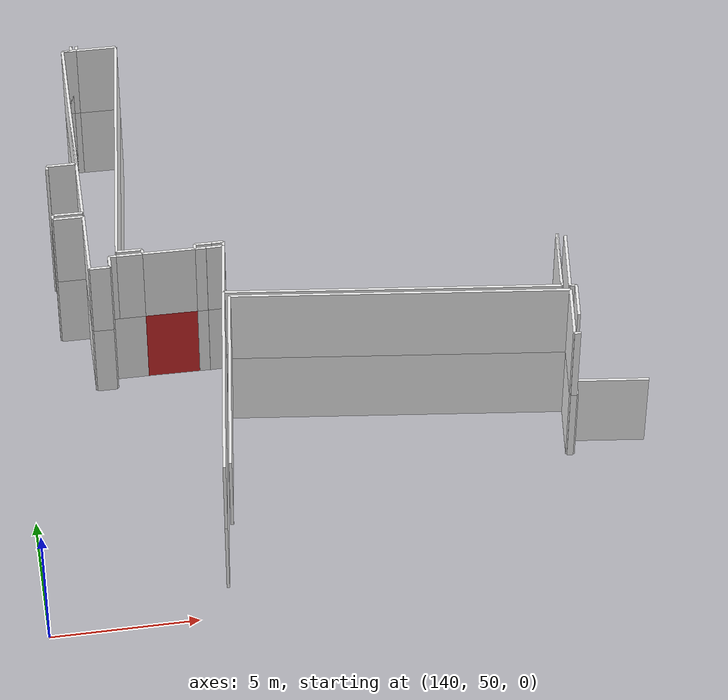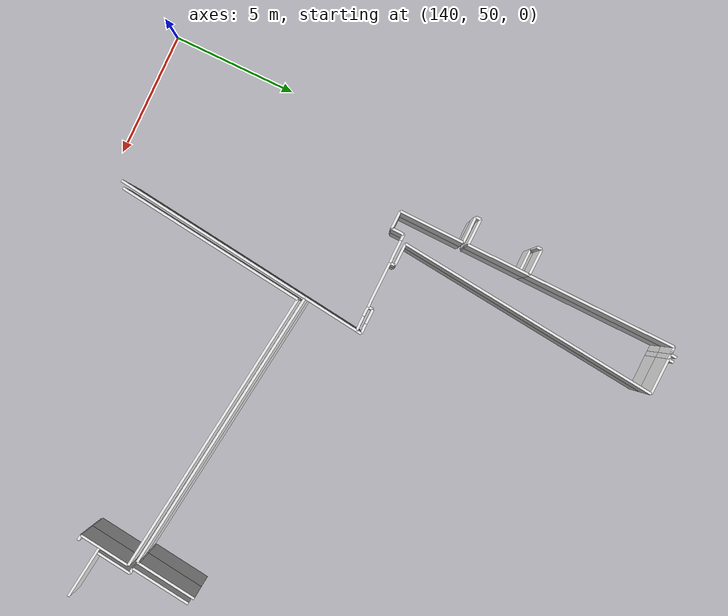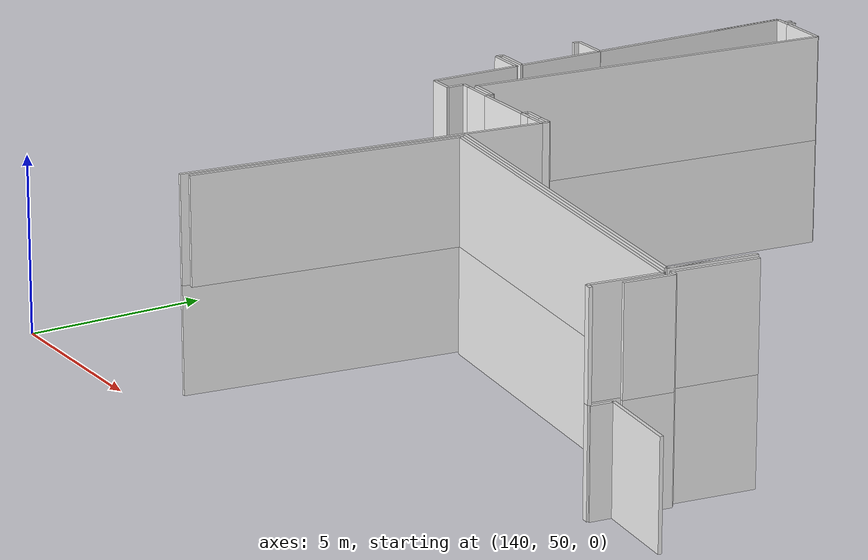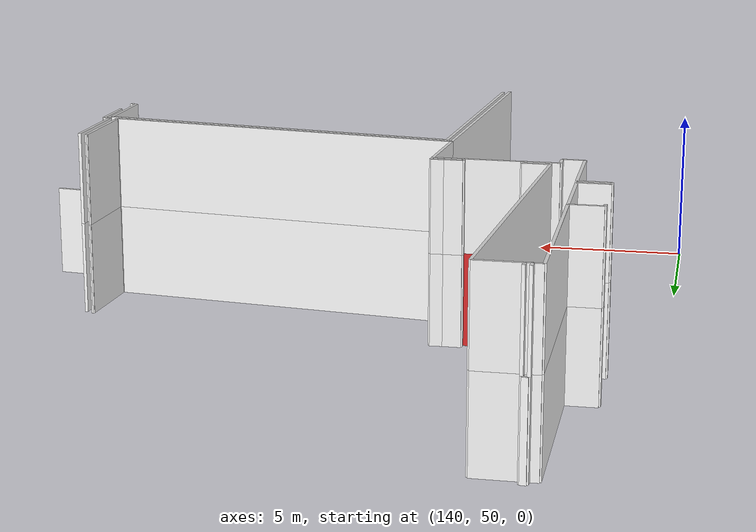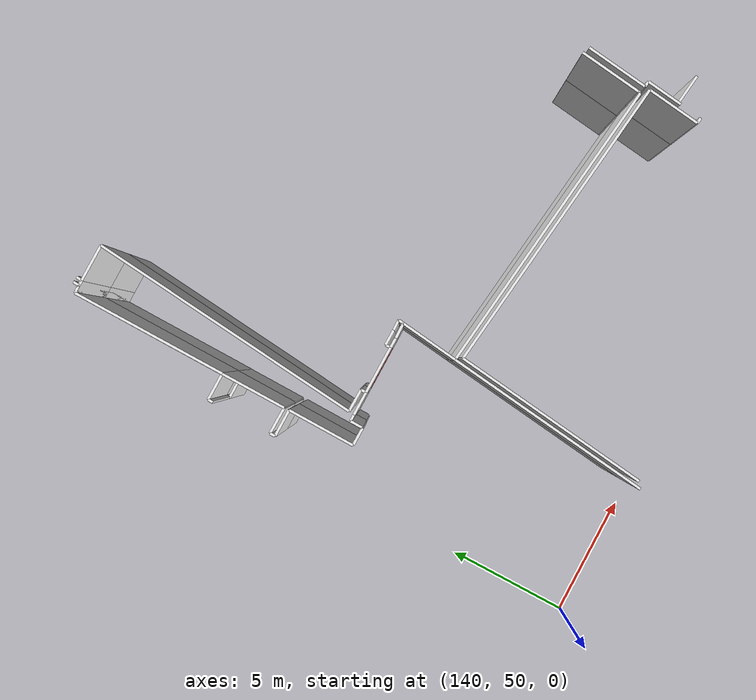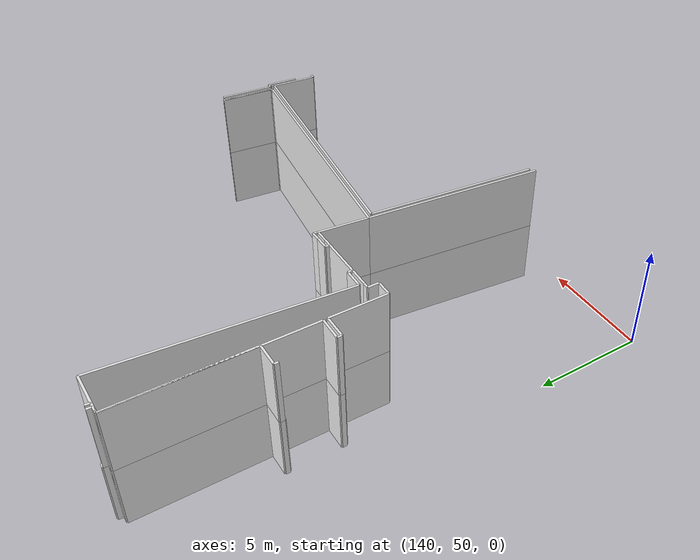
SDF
<sdf version="1.6">
 <world name="default">
  <model name="wall_145.4_61.4_1.5">
   <static>true</static>
   <pose>145.44999999998254 61.360000000102445 1.5 0 0 -0.011110653908026076</pose>
   <link name="link">
    <visual name="visual">
     <geometry><box><size>1.8001111076705336 0.1 3</size></box></geometry>
     <material>
      <script><uri>file://media/materials/scripts/gazebo.material</uri><name>Gazebo/Red</name></script>
     </material>
    </visual>
    <collision name="collision"><geometry><box><size>1.8001111076705336 0.1 3</size></box></geometry></collision>
   </link>
  </model>
  <model name="wall_152.9_58.2_1.5">
   <static>true</static>
   <pose>152.92500000001746 58.22999999998137 1.5 0 0 -0.12015333859032509</pose>
   <link name="link">
    <visual name="visual">
     <geometry><box><size>11.513005689199145 0.1 3</size></box></geometry>
     <material>
      <script><uri>file://media/materials/scripts/gazebo.material</uri><name>Gazebo/White</name></script>
     </material>
    </visual>
    <collision name="collision"><geometry><box><size>11.513005689199145 0.1 3</size></box></geometry></collision>
   </link>
  </model>
  <model name="wall_158.5_56.5_1.5">
   <static>true</static>
   <pose>158.51500000001397 56.53000000002794 1.5 0 0 -1.6939325529007196</pose>
   <link name="link">
    <visual name="visual">
     <geometry><box><size>2.0354115063237828 0.1 3</size></box></geometry>
     <material>
      <script><uri>file://media/materials/scripts/gazebo.material</uri><name>Gazebo/White</name></script>
     </material>
    </visual>
    <collision name="collision"><geometry><box><size>2.0354115063237828 0.1 3</size></box></geometry></collision>
   </link>
  </model>
  <model name="wall_158.5_55.5_1.5">
   <static>true</static>
   <pose>158.49499999999534 55.50500000012107 1.5 0 0 -0.14189705367284136</pose>
   <link name="link">
    <visual name="visual">
     <geometry><box><size>0.2121320342901098 0.1 3</size></box></geometry>
     <material>
      <script><uri>file://media/materials/scripts/gazebo.material</uri><name>Gazebo/White</name></script>
     </material>
    </visual>
    <collision name="collision"><geometry><box><size>0.2121320342901098 0.1 3</size></box></geometry></collision>
   </link>
  </model>
  <model name="wall_158.8_57.0_1.5">
   <static>true</static>
   <pose>158.7850000000035 57.03000000002794 1.5 0 0 1.4482254517181363</pose>
   <link name="link">
    <visual name="visual">
     <geometry><box><size>1.390431588022665 0.1 3</size></box></geometry>
     <material>
      <script><uri>file://media/materials/scripts/gazebo.material</uri><name>Gazebo/White</name></script>
     </material>
    </visual>
    <collision name="collision"><geometry><box><size>1.390431588022665 0.1 3</size></box></geometry></collision>
   </link>
  </model>
  <model name="wall_158.8_57.7_1.5">
   <static>true</static>
   <pose>158.76499999998487 57.730000000214204 1.5 0 0 3.0466409471685547</pose>
   <link name="link">
    <visual name="visual">
     <geometry><box><size>0.21095023111991618 0.1 3</size></box></geometry>
     <material>
      <script><uri>file://media/materials/scripts/gazebo.material</uri><name>Gazebo/White</name></script>
     </material>
    </visual>
    <collision name="collision"><geometry><box><size>0.21095023111991618 0.1 3</size></box></geometry></collision>
   </link>
  </model>
  <model name="wall_158.8_58.9_1.5">
   <static>true</static>
   <pose>158.80499999999302 58.93000000016764 1.5 0 0 1.4495453057038894</pose>
   <link name="link">
    <visual name="visual">
     <geometry><box><size>2.3976029695280316 0.1 3</size></box></geometry>
     <material>
      <script><uri>file://media/materials/scripts/gazebo.material</uri><name>Gazebo/White</name></script>
     </material>
    </visual>
    <collision name="collision"><geometry><box><size>2.3976029695280316 0.1 3</size></box></geometry></collision>
   </link>
  </model>
  <model name="wall_159.9_56.0_1.5">
   <static>true</static>
   <pose>159.91499999997905 55.98999999999069 1.5 0 0 3.021688668113723</pose>
   <link name="link">
    <visual name="visual">
     <geometry><box><size>2.508007177047398 0.1 3</size></box></geometry>
     <material>
      <script><uri>file://media/materials/scripts/gazebo.material</uri><name>Gazebo/White</name></script>
     </material>
    </visual>
    <collision name="collision"><geometry><box><size>2.508007177047398 0.1 3</size></box></geometry></collision>
   </link>
  </model>
  <model name="wall_158.6_55.8_1.5">
   <static>true</static>
   <pose>158.6349999999802 55.81500000017695 1.5 0 0 -1.6780751824691755</pose>
   <link name="link">
    <visual name="visual">
     <geometry><box><size>0.6537583650553972 0.1 3</size></box></geometry>
     <material>
      <script><uri>file://media/materials/scripts/gazebo.material</uri><name>Gazebo/White</name></script>
     </material>
    </visual>
    <collision name="collision"><geometry><box><size>0.6537583650553972 0.1 3</size></box></geometry></collision>
   </link>
  </model>
  <model name="wall_142.2_63.7_1.5">
   <static>true</static>
   <pose>142.2049999999872 63.670000000158325 1.5 0 0 -0.01941503592096556</pose>
   <link name="link">
    <visual name="visual">
     <geometry><box><size>1.0301941564279975 0.1 3</size></box></geometry>
     <material>
      <script><uri>file://media/materials/scripts/gazebo.material</uri><name>Gazebo/White</name></script>
     </material>
    </visual>
    <collision name="collision"><geometry><box><size>1.0301941564279975 0.1 3</size></box></geometry></collision>
   </link>
  </model>
  <model name="wall_142.7_64.8_1.5">
   <static>true</static>
   <pose>142.73499999998603 64.81000000005588 1.5 0 0 1.5577535881510873</pose>
   <link name="link">
    <visual name="visual">
     <geometry><box><size>2.3001956436670468 0.1 3</size></box></geometry>
     <material>
      <script><uri>file://media/materials/scripts/gazebo.material</uri><name>Gazebo/White</name></script>
     </material>
    </visual>
    <collision name="collision"><geometry><box><size>2.3001956436670468 0.1 3</size></box></geometry></collision>
   </link>
  </model>
  <model name="wall_142.2_66.0_1.5">
   <static>true</static>
   <pose>142.23000000001048 65.96500000008382 1.5 0 0 3.131977565057088</pose>
   <link name="link">
    <visual name="visual">
     <geometry><box><size>1.0400480757932573 0.1 3</size></box></geometry>
     <material>
      <script><uri>file://media/materials/scripts/gazebo.material</uri><name>Gazebo/White</name></script>
     </material>
    </visual>
    <collision name="collision"><geometry><box><size>1.0400480757932573 0.1 3</size></box></geometry></collision>
   </link>
  </model>
  <model name="wall_141.7_66.1_1.5">
   <static>true</static>
   <pose>141.7149999999965 66.06500000017695 1.5 0 0 1.5182132654251468</pose>
   <link name="link">
    <visual name="visual">
     <geometry><box><size>0.19026297584603252 0.1 3</size></box></geometry>
     <material>
      <script><uri>file://media/materials/scripts/gazebo.material</uri><name>Gazebo/White</name></script>
     </material>
    </visual>
    <collision name="collision"><geometry><box><size>0.19026297584603252 0.1 3</size></box></geometry></collision>
   </link>
  </model>
  <model name="wall_142.2_66.2_1.5">
   <static>true</static>
   <pose>142.2399999999907 66.15500000002794 1.5 0 0 -0.009615088532167242</pose>
   <link name="link">
    <visual name="visual">
     <geometry><box><size>1.0400480758514623 0.1 3</size></box></geometry>
     <material>
      <script><uri>file://media/materials/scripts/gazebo.material</uri><name>Gazebo/White</name></script>
     </material>
    </visual>
    <collision name="collision"><geometry><box><size>1.0400480758514623 0.1 3</size></box></geometry></collision>
   </link>
  </model>
  <model name="wall_142.8_69.1_1.5">
   <static>true</static>
   <pose>142.7950000000128 69.10499999998137 1.5 0 0 1.5589525489794016</pose>
   <link name="link">
    <visual name="visual">
     <geometry><box><size>5.910414537218375 0.1 3</size></box></geometry>
     <material>
      <script><uri>file://media/materials/scripts/gazebo.material</uri><name>Gazebo/White</name></script>
     </material>
    </visual>
    <collision name="collision"><geometry><box><size>5.910414537218375 0.1 3</size></box></geometry></collision>
   </link>
  </model>
  <model name="wall_143.0_72.1_1.5">
   <static>true</static>
   <pose>142.98000000001048 72.06000000005588 1.5 0 0 0.0</pose>
   <link name="link">
    <visual name="visual">
     <geometry><box><size>0.29999999998835847 0.1 3</size></box></geometry>
     <material>
      <script><uri>file://media/materials/scripts/gazebo.material</uri><name>Gazebo/White</name></script>
     </material>
    </visual>
    <collision name="collision"><geometry><box><size>0.29999999998835847 0.1 3</size></box></geometry></collision>
   </link>
  </model>
  <model name="wall_143.1_72.2_1.5">
   <static>true</static>
   <pose>143.14000000001397 72.17999999993481 1.5 0 0 1.4876550947458824</pose>
   <link name="link">
    <visual name="visual">
     <geometry><box><size>0.24083189133608532 0.1 3</size></box></geometry>
     <material>
      <script><uri>file://media/materials/scripts/gazebo.material</uri><name>Gazebo/White</name></script>
     </material>
    </visual>
    <collision name="collision"><geometry><box><size>0.24083189133608532 0.1 3</size></box></geometry></collision>
   </link>
  </model>
  <model name="wall_143.2_72.3_1.5">
   <static>true</static>
   <pose>143.25 72.28999999980442 1.5 0 0 -0.09966865260642473</pose>
   <link name="link">
    <visual name="visual">
     <geometry><box><size>0.20099751237793617 0.1 3</size></box></geometry>
     <material>
      <script><uri>file://media/materials/scripts/gazebo.material</uri><name>Gazebo/White</name></script>
     </material>
    </visual>
    <collision name="collision"><geometry><box><size>0.20099751237793617 0.1 3</size></box></geometry></collision>
   </link>
  </model>
  <model name="wall_146.5_61.3_1.5">
   <static>true</static>
   <pose>146.5349999999744 61.34499999997206 1.5 0 0 -0.02702044984156988</pose>
   <link name="link">
    <visual name="visual">
     <geometry><box><size>0.37013511046832204 0.1 3</size></box></geometry>
     <material>
      <script><uri>file://media/materials/scripts/gazebo.material</uri><name>Gazebo/White</name></script>
     </material>
    </visual>
    <collision name="collision"><geometry><box><size>0.37013511046832204 0.1 3</size></box></geometry></collision>
   </link>
  </model>
  <model name="wall_147.0_61.3_1.5">
   <static>true</static>
   <pose>147.01499999998487 61.34499999997206 1.5 0 0 0.016947530215964846</pose>
   <link name="link">
    <visual name="visual">
     <geometry><box><size>0.5900847397069884 0.1 3</size></box></geometry>
     <material>
      <script><uri>file://media/materials/scripts/gazebo.material</uri><name>Gazebo/White</name></script>
     </material>
    </visual>
    <collision name="collision"><geometry><box><size>0.5900847397069884 0.1 3</size></box></geometry></collision>
   </link>
  </model>
  <model name="wall_147.2_60.2_1.5">
   <static>true</static>
   <pose>147.17499999998836 60.24500000011176 1.5 0 0 -1.6923658132359836</pose>
   <link name="link">
    <visual name="visual">
     <geometry><box><size>2.226432123341154 0.1 3</size></box></geometry>
     <material>
      <script><uri>file://media/materials/scripts/gazebo.material</uri><name>Gazebo/White</name></script>
     </material>
    </visual>
    <collision name="collision"><geometry><box><size>2.226432123341154 0.1 3</size></box></geometry></collision>
   </link>
  </model>
  <model name="wall_146.6_55.2_1.5">
   <static>true</static>
   <pose>146.55999999999767 55.19500000006519 1.5 0 0 -1.6918741795088168</pose>
   <link name="link">
    <visual name="visual">
     <geometry><box><size>7.9481884729783525 0.1 3</size></box></geometry>
     <material>
      <script><uri>file://media/materials/scripts/gazebo.material</uri><name>Gazebo/White</name></script>
     </material>
    </visual>
    <collision name="collision"><geometry><box><size>7.9481884729783525 0.1 3</size></box></geometry></collision>
   </link>
  </model>
  <model name="wall_141.7_63.6_1.5">
   <static>true</static>
   <pose>141.69000000000233 63.580000000074506 1.5 0 0 -1.5707963267948966</pose>
   <link name="link">
    <visual name="visual">
     <geometry><box><size>0.20000000018626451 0.1 3</size></box></geometry>
     <material>
      <script><uri>file://media/materials/scripts/gazebo.material</uri><name>Gazebo/White</name></script>
     </material>
    </visual>
    <collision name="collision"><geometry><box><size>0.20000000018626451 0.1 3</size></box></geometry></collision>
   </link>
  </model>
  <model name="wall_142.2_63.5_1.5">
   <static>true</static>
   <pose>142.20999999999185 63.47500000009313 1.5 0 0 -0.00961508808499551</pose>
   <link name="link">
    <visual name="visual">
     <geometry><box><size>1.04004807578878 0.1 3</size></box></geometry>
     <material>
      <script><uri>file://media/materials/scripts/gazebo.material</uri><name>Gazebo/White</name></script>
     </material>
    </visual>
    <collision name="collision"><geometry><box><size>1.04004807578878 0.1 3</size></box></geometry></collision>
   </link>
  </model>
  <model name="wall_142.7_62.2_1.5">
   <static>true</static>
   <pose>142.70999999999185 62.18500000005588 1.5 0 0 -1.5863592725219522</pose>
   <link name="link">
    <visual name="visual">
     <geometry><box><size>2.570311265494933 0.1 3</size></box></geometry>
     <material>
      <script><uri>file://media/materials/scripts/gazebo.material</uri><name>Gazebo/White</name></script>
     </material>
    </visual>
    <collision name="collision"><geometry><box><size>2.570311265494933 0.1 3</size></box></geometry></collision>
   </link>
  </model>
  <model name="wall_143.0_60.9_1.5">
   <static>true</static>
   <pose>143.04000000000815 60.89500000001863 1.5 0 0 -0.014284742267913651</pose>
   <link name="link">
    <visual name="visual">
     <geometry><box><size>0.7000714249359331 0.1 3</size></box></geometry>
     <material>
      <script><uri>file://media/materials/scripts/gazebo.material</uri><name>Gazebo/White</name></script>
     </material>
    </visual>
    <collision name="collision"><geometry><box><size>0.7000714249359331 0.1 3</size></box></geometry></collision>
   </link>
  </model>
  <model name="wall_143.4_61.1_1.5">
   <static>true</static>
   <pose>143.39500000001863 61.13500000000931 1.5 0 0 1.550390996079279</pose>
   <link name="link">
    <visual name="visual">
     <geometry><box><size>0.4901020299518104 0.1 3</size></box></geometry>
     <material>
      <script><uri>file://media/materials/scripts/gazebo.material</uri><name>Gazebo/White</name></script>
     </material>
    </visual>
    <collision name="collision"><geometry><box><size>0.4901020299518104 0.1 3</size></box></geometry></collision>
   </link>
  </model>
  <model name="wall_143.5_61.4_1.5">
   <static>true</static>
   <pose>143.52500000002328 61.37999999988824 1.5 0 0 0.0</pose>
   <link name="link">
    <visual name="visual">
     <geometry><box><size>0.25 0.1 3</size></box></geometry>
     <material>
      <script><uri>file://media/materials/scripts/gazebo.material</uri><name>Gazebo/White</name></script>
     </material>
    </visual>
    <collision name="collision"><geometry><box><size>0.25 0.1 3</size></box></geometry></collision>
   </link>
  </model>
  <model name="wall_144.1_61.4_1.5">
   <static>true</static>
   <pose>144.10000000000582 61.375 1.5 0 0 -0.011110653649716558</pose>
   <link name="link">
    <visual name="visual">
     <geometry><box><size>0.9000555538035779 0.1 3</size></box></geometry>
     <material>
      <script><uri>file://media/materials/scripts/gazebo.material</uri><name>Gazebo/White</name></script>
     </material>
    </visual>
    <collision name="collision"><geometry><box><size>0.9000555538035779 0.1 3</size></box></geometry></collision>
   </link>
  </model>
  <model name="wall_158.5_59.1_1.5">
   <static>true</static>
   <pose>158.5450000000128 59.06000000005588 1.5 0 0 -1.6930647307080706</pose>
   <link name="link">
    <visual name="visual">
     <geometry><box><size>2.377751038601466 0.1 3</size></box></geometry>
     <material>
      <script><uri>file://media/materials/scripts/gazebo.material</uri><name>Gazebo/White</name></script>
     </material>
    </visual>
    <collision name="collision"><geometry><box><size>2.377751038601466 0.1 3</size></box></geometry></collision>
   </link>
  </model>
  <model name="wall_158.4_57.8_1.5">
   <static>true</static>
   <pose>158.39500000001863 57.829999999841675 1.5 0 0 -1.6704649792860586</pose>
   <link name="link">
    <visual name="visual">
     <geometry><box><size>0.10049875630480566 0.1 3</size></box></geometry>
     <material>
      <script><uri>file://media/materials/scripts/gazebo.material</uri><name>Gazebo/White</name></script>
     </material>
    </visual>
    <collision name="collision"><geometry><box><size>0.10049875630480566 0.1 3</size></box></geometry></collision>
   </link>
  </model>
  <model name="wall_152.7_58.5_1.5">
   <static>true</static>
   <pose>152.7149999999965 58.45999999996275 1.5 0 0 3.022337441191368</pose>
   <link name="link">
    <visual name="visual">
     <geometry><box><size>11.431189789418454 0.1 3</size></box></geometry>
     <material>
      <script><uri>file://media/materials/scripts/gazebo.material</uri><name>Gazebo/White</name></script>
     </material>
    </visual>
    <collision name="collision"><geometry><box><size>11.431189789418454 0.1 3</size></box></geometry></collision>
   </link>
  </model>
  <model name="wall_147.3_61.4_1.5">
   <static>true</static>
   <pose>147.32500000001164 61.449999999953434 1.5 0 0 1.4219063788438384</pose>
   <link name="link">
    <visual name="visual">
     <geometry><box><size>0.2022374838894058 0.1 3</size></box></geometry>
     <material>
      <script><uri>file://media/materials/scripts/gazebo.material</uri><name>Gazebo/White</name></script>
     </material>
    </visual>
    <collision name="collision"><geometry><box><size>0.2022374838894058 0.1 3</size></box></geometry></collision>
   </link>
  </model>
  <model name="wall_147.1_61.5_1.5">
   <static>true</static>
   <pose>147.14000000001397 61.544999999925494 1.5 0 0 -3.116597860530772</pose>
   <link name="link">
    <visual name="visual">
     <geometry><box><size>0.40012498049254075 0.1 3</size></box></geometry>
     <material>
      <script><uri>file://media/materials/scripts/gazebo.material</uri><name>Gazebo/White</name></script>
     </material>
    </visual>
    <collision name="collision"><geometry><box><size>0.40012498049254075 0.1 3</size></box></geometry></collision>
   </link>
  </model>
  <model name="wall_146.6_61.5_1.5">
   <static>true</static>
   <pose>146.64499999998952 61.544999999925494 1.5 0 0 3.1246451241628583</pose>
   <link name="link">
    <visual name="visual">
     <geometry><box><size>0.590084739699097 0.1 3</size></box></geometry>
     <material>
      <script><uri>file://media/materials/scripts/gazebo.material</uri><name>Gazebo/White</name></script>
     </material>
    </visual>
    <collision name="collision"><geometry><box><size>0.590084739699097 0.1 3</size></box></geometry></collision>
   </link>
  </model>
  <model name="wall_146.3_61.4_1.5">
   <static>true</static>
   <pose>146.34999999997672 61.449999999953434 1.5 0 0 -1.5707963267948966</pose>
   <link name="link">
    <visual name="visual">
     <geometry><box><size>0.19999999972060323 0.1 3</size></box></geometry>
     <material>
      <script><uri>file://media/materials/scripts/gazebo.material</uri><name>Gazebo/White</name></script>
     </material>
    </visual>
    <collision name="collision"><geometry><box><size>0.19999999972060323 0.1 3</size></box></geometry></collision>
   </link>
  </model>
  <model name="wall_144.5_61.5_1.5">
   <static>true</static>
   <pose>144.54999999998836 61.46999999997206 1.5 0 0 1.5707963267948966</pose>
   <link name="link">
    <visual name="visual">
     <geometry><box><size>0.19999999972060323 0.1 3</size></box></geometry>
     <material>
      <script><uri>file://media/materials/scripts/gazebo.material</uri><name>Gazebo/White</name></script>
     </material>
    </visual>
    <collision name="collision"><geometry><box><size>0.19999999972060323 0.1 3</size></box></geometry></collision>
   </link>
  </model>
  <model name="wall_144.1_61.6_1.5">
   <static>true</static>
   <pose>144.1149999999907 61.579999999841675 1.5 0 0 3.1186081961268197</pose>
   <link name="link">
    <visual name="visual">
     <geometry><box><size>0.8702298546893473 0.1 3</size></box></geometry>
     <material>
      <script><uri>file://media/materials/scripts/gazebo.material</uri><name>Gazebo/White</name></script>
     </material>
    </visual>
    <collision name="collision"><geometry><box><size>0.8702298546893473 0.1 3</size></box></geometry></collision>
   </link>
  </model>
  <model name="wall_144.2_66.8_1.5">
   <static>true</static>
   <pose>144.20999999999185 66.81499999994412 1.5 0 0 1.469706682461873</pose>
   <link name="link">
    <visual name="visual">
     <geometry><box><size>10.503623184591495 0.1 3</size></box></geometry>
     <material>
      <script><uri>file://media/materials/scripts/gazebo.material</uri><name>Gazebo/White</name></script>
     </material>
    </visual>
    <collision name="collision"><geometry><box><size>10.503623184591495 0.1 3</size></box></geometry></collision>
   </link>
  </model>
  <model name="wall_144.0_72.1_1.5">
   <static>true</static>
   <pose>144.0350000000035 72.05000000004657 1.5 0 0 3.1274092075850195</pose>
   <link name="link">
    <visual name="visual">
     <geometry><box><size>1.4101418368123546 0.1 3</size></box></geometry>
     <material>
      <script><uri>file://media/materials/scripts/gazebo.material</uri><name>Gazebo/White</name></script>
     </material>
    </visual>
    <collision name="collision"><geometry><box><size>1.4101418368123546 0.1 3</size></box></geometry></collision>
   </link>
  </model>
  <model name="wall_143.3_72.2_1.5">
   <static>true</static>
   <pose>143.3399999999965 72.1699999999255 1.5 0 0 1.4801364396657184</pose>
   <link name="link">
    <visual name="visual">
     <geometry><box><size>0.22090722008046232 0.1 3</size></box></geometry>
     <material>
      <script><uri>file://media/materials/scripts/gazebo.material</uri><name>Gazebo/White</name></script>
     </material>
    </visual>
    <collision name="collision"><geometry><box><size>0.22090722008046232 0.1 3</size></box></geometry></collision>
   </link>
  </model>
  <model name="wall_144.0_61.4_1.5">
   <static>true</static>
   <pose>143.97500000000582 61.375 1.5 0 0 -0.008695432817694347</pose>
   <link name="link">
    <visual name="visual">
     <geometry><box><size>1.1500434774021384 0.1 3</size></box></geometry>
     <material>
      <script><uri>file://media/materials/scripts/gazebo.material</uri><name>Gazebo/White</name></script>
     </material>
    </visual>
    <collision name="collision"><geometry><box><size>1.1500434774021384 0.1 3</size></box></geometry></collision>
   </link>
  </model>
  <model name="wall_146.8_61.4_1.5">
   <static>true</static>
   <pose>146.8299999999872 61.35000000009313 1.5 0 0 0.0</pose>
   <link name="link">
    <visual name="visual">
     <geometry><box><size>0.9600000000209548 0.1 3</size></box></geometry>
     <material>
      <script><uri>file://media/materials/scripts/gazebo.material</uri><name>Gazebo/White</name></script>
     </material>
    </visual>
    <collision name="collision"><geometry><box><size>0.9600000000209548 0.1 3</size></box></geometry></collision>
   </link>
  </model>
  <model name="wall_143.1_72.1_1.5">
   <static>true</static>
   <pose>143.0800000000163 72.06000000005588 1.5 0 0 3.141592653589793</pose>
   <link name="link">
    <visual name="visual">
     <geometry><box><size>0.5 0.1 3</size></box></geometry>
     <material>
      <script><uri>file://media/materials/scripts/gazebo.material</uri><name>Gazebo/White</name></script>
     </material>
    </visual>
    <collision name="collision"><geometry><box><size>0.5 0.1 3</size></box></geometry></collision>
   </link>
  </model>
  <model name="wall_142.8_67.9_1.5">
   <static>true</static>
   <pose>142.77499999999418 67.86000000010245 1.5 0 0 -1.5838908164257817</pose>
   <link name="link">
    <visual name="visual">
     <geometry><box><size>8.400720207127787 0.1 3</size></box></geometry>
     <material>
      <script><uri>file://media/materials/scripts/gazebo.material</uri><name>Gazebo/White</name></script>
     </material>
    </visual>
    <collision name="collision"><geometry><box><size>8.400720207127787 0.1 3</size></box></geometry></collision>
   </link>
  </model>
  <model name="wall_158.5_59.0_1.5">
   <static>true</static>
   <pose>158.54000000000815 59.01000000000931 1.5 0 0 1.4494443262497225</pose>
   <link name="link">
    <visual name="visual">
     <geometry><box><size>2.4782251717914545 0.1 3</size></box></geometry>
     <material>
      <script><uri>file://media/materials/scripts/gazebo.material</uri><name>Gazebo/White</name></script>
     </material>
    </visual>
    <collision name="collision"><geometry><box><size>2.4782251717914545 0.1 3</size></box></geometry></collision>
   </link>
  </model>
  <model name="wall_146.8_55.2_4.5">
   <static>true</static>
   <pose>146.75500000000466 55.16500000003725 4.5 0 0 1.4502124243818328</pose>
   <link name="link">
    <visual name="visual">
     <geometry><box><size>7.564932253279079 0.1 3</size></box></geometry>
     <material>
      <script><uri>file://media/materials/scripts/gazebo.material</uri><name>Gazebo/White</name></script>
     </material>
    </visual>
    <collision name="collision"><geometry><box><size>7.564932253279079 0.1 3</size></box></geometry></collision>
   </link>
  </model>
  <model name="wall_152.9_58.2_4.5">
   <static>true</static>
   <pose>152.92500000001746 58.22999999998137 4.5 0 0 -0.12015333859032509</pose>
   <link name="link">
    <visual name="visual">
     <geometry><box><size>11.513005689199145 0.1 3</size></box></geometry>
     <material>
      <script><uri>file://media/materials/scripts/gazebo.material</uri><name>Gazebo/White</name></script>
     </material>
    </visual>
    <collision name="collision"><geometry><box><size>11.513005689199145 0.1 3</size></box></geometry></collision>
   </link>
  </model>
  <model name="wall_158.5_56.5_4.5">
   <static>true</static>
   <pose>158.51500000001397 56.53000000002794 4.5 0 0 -1.6939325529007196</pose>
   <link name="link">
    <visual name="visual">
     <geometry><box><size>2.0354115063237828 0.1 3</size></box></geometry>
     <material>
      <script><uri>file://media/materials/scripts/gazebo.material</uri><name>Gazebo/White</name></script>
     </material>
    </visual>
    <collision name="collision"><geometry><box><size>2.0354115063237828 0.1 3</size></box></geometry></collision>
   </link>
  </model>
  <model name="wall_158.5_55.5_4.5">
   <static>true</static>
   <pose>158.49499999999534 55.50500000012107 4.5 0 0 -0.14189705367284136</pose>
   <link name="link">
    <visual name="visual">
     <geometry><box><size>0.2121320342901098 0.1 3</size></box></geometry>
     <material>
      <script><uri>file://media/materials/scripts/gazebo.material</uri><name>Gazebo/White</name></script>
     </material>
    </visual>
    <collision name="collision"><geometry><box><size>0.2121320342901098 0.1 3</size></box></geometry></collision>
   </link>
  </model>
  <model name="wall_158.8_57.0_4.5">
   <static>true</static>
   <pose>158.7850000000035 57.03000000002794 4.5 0 0 1.4482254517181363</pose>
   <link name="link">
    <visual name="visual">
     <geometry><box><size>1.390431588022665 0.1 3</size></box></geometry>
     <material>
      <script><uri>file://media/materials/scripts/gazebo.material</uri><name>Gazebo/White</name></script>
     </material>
    </visual>
    <collision name="collision"><geometry><box><size>1.390431588022665 0.1 3</size></box></geometry></collision>
   </link>
  </model>
  <model name="wall_158.8_57.7_4.5">
   <static>true</static>
   <pose>158.76499999998487 57.730000000214204 4.5 0 0 3.0466409471685547</pose>
   <link name="link">
    <visual name="visual">
     <geometry><box><size>0.21095023111991618 0.1 3</size></box></geometry>
     <material>
      <script><uri>file://media/materials/scripts/gazebo.material</uri><name>Gazebo/White</name></script>
     </material>
    </visual>
    <collision name="collision"><geometry><box><size>0.21095023111991618 0.1 3</size></box></geometry></collision>
   </link>
  </model>
  <model name="wall_158.8_58.9_4.5">
   <static>true</static>
   <pose>158.80499999999302 58.93000000016764 4.5 0 0 1.4495453057038894</pose>
   <link name="link">
    <visual name="visual">
     <geometry><box><size>2.3976029695280316 0.1 3</size></box></geometry>
     <material>
      <script><uri>file://media/materials/scripts/gazebo.material</uri><name>Gazebo/White</name></script>
     </material>
    </visual>
    <collision name="collision"><geometry><box><size>2.3976029695280316 0.1 3</size></box></geometry></collision>
   </link>
  </model>
  <model name="wall_141.7_66.1_4.5">
   <static>true</static>
   <pose>141.7149999999965 66.06500000017695 4.5 0 0 1.5182132654251468</pose>
   <link name="link">
    <visual name="visual">
     <geometry><box><size>0.19026297584603252 0.1 3</size></box></geometry>
     <material>
      <script><uri>file://media/materials/scripts/gazebo.material</uri><name>Gazebo/White</name></script>
     </material>
    </visual>
    <collision name="collision"><geometry><box><size>0.19026297584603252 0.1 3</size></box></geometry></collision>
   </link>
  </model>
  <model name="wall_142.2_66.2_4.5">
   <static>true</static>
   <pose>142.2399999999907 66.15500000002794 4.5 0 0 -0.009615088532167242</pose>
   <link name="link">
    <visual name="visual">
     <geometry><box><size>1.0400480758514623 0.1 3</size></box></geometry>
     <material>
      <script><uri>file://media/materials/scripts/gazebo.material</uri><name>Gazebo/White</name></script>
     </material>
    </visual>
    <collision name="collision"><geometry><box><size>1.0400480758514623 0.1 3</size></box></geometry></collision>
   </link>
  </model>
  <model name="wall_142.8_69.1_4.5">
   <static>true</static>
   <pose>142.7950000000128 69.10499999998137 4.5 0 0 1.5589525489794016</pose>
   <link name="link">
    <visual name="visual">
     <geometry><box><size>5.910414537218375 0.1 3</size></box></geometry>
     <material>
      <script><uri>file://media/materials/scripts/gazebo.material</uri><name>Gazebo/White</name></script>
     </material>
    </visual>
    <collision name="collision"><geometry><box><size>5.910414537218375 0.1 3</size></box></geometry></collision>
   </link>
  </model>
  <model name="wall_143.0_72.1_4.5">
   <static>true</static>
   <pose>142.98000000001048 72.06000000005588 4.5 0 0 0.0</pose>
   <link name="link">
    <visual name="visual">
     <geometry><box><size>0.29999999998835847 0.1 3</size></box></geometry>
     <material>
      <script><uri>file://media/materials/scripts/gazebo.material</uri><name>Gazebo/White</name></script>
     </material>
    </visual>
    <collision name="collision"><geometry><box><size>0.29999999998835847 0.1 3</size></box></geometry></collision>
   </link>
  </model>
  <model name="wall_143.1_72.2_4.5">
   <static>true</static>
   <pose>143.14000000001397 72.17999999993481 4.5 0 0 1.4876550947458824</pose>
   <link name="link">
    <visual name="visual">
     <geometry><box><size>0.24083189133608532 0.1 3</size></box></geometry>
     <material>
      <script><uri>file://media/materials/scripts/gazebo.material</uri><name>Gazebo/White</name></script>
     </material>
    </visual>
    <collision name="collision"><geometry><box><size>0.24083189133608532 0.1 3</size></box></geometry></collision>
   </link>
  </model>
  <model name="wall_145.4_61.4_4.5">
   <static>true</static>
   <pose>145.44999999998254 61.360000000102445 4.5 0 0 -0.011110653908026076</pose>
   <link name="link">
    <visual name="visual">
     <geometry><box><size>1.8001111076705336 0.1 3</size></box></geometry>
     <material>
      <script><uri>file://media/materials/scripts/gazebo.material</uri><name>Gazebo/White</name></script>
     </material>
    </visual>
    <collision name="collision"><geometry><box><size>1.8001111076705336 0.1 3</size></box></geometry></collision>
   </link>
  </model>
  <model name="wall_146.5_61.3_4.5">
   <static>true</static>
   <pose>146.5349999999744 61.34499999997206 4.5 0 0 -0.02702044984156988</pose>
   <link name="link">
    <visual name="visual">
     <geometry><box><size>0.37013511046832204 0.1 3</size></box></geometry>
     <material>
      <script><uri>file://media/materials/scripts/gazebo.material</uri><name>Gazebo/White</name></script>
     </material>
    </visual>
    <collision name="collision"><geometry><box><size>0.37013511046832204 0.1 3</size></box></geometry></collision>
   </link>
  </model>
  <model name="wall_147.0_61.3_4.5">
   <static>true</static>
   <pose>147.01499999998487 61.34499999997206 4.5 0 0 0.016947530215964846</pose>
   <link name="link">
    <visual name="visual">
     <geometry><box><size>0.5900847397069884 0.1 3</size></box></geometry>
     <material>
      <script><uri>file://media/materials/scripts/gazebo.material</uri><name>Gazebo/White</name></script>
     </material>
    </visual>
    <collision name="collision"><geometry><box><size>0.5900847397069884 0.1 3</size></box></geometry></collision>
   </link>
  </model>
  <model name="wall_147.2_60.2_4.5">
   <static>true</static>
   <pose>147.17499999998836 60.24500000011176 4.5 0 0 -1.6923658132359836</pose>
   <link name="link">
    <visual name="visual">
     <geometry><box><size>2.226432123341154 0.1 3</size></box></geometry>
     <material>
      <script><uri>file://media/materials/scripts/gazebo.material</uri><name>Gazebo/White</name></script>
     </material>
    </visual>
    <collision name="collision"><geometry><box><size>2.226432123341154 0.1 3</size></box></geometry></collision>
   </link>
  </model>
  <model name="wall_146.6_55.2_4.5">
   <static>true</static>
   <pose>146.55999999999767 55.19500000006519 4.5 0 0 -1.6918741795088168</pose>
   <link name="link">
    <visual name="visual">
     <geometry><box><size>7.9481884729783525 0.1 3</size></box></geometry>
     <material>
      <script><uri>file://media/materials/scripts/gazebo.material</uri><name>Gazebo/White</name></script>
     </material>
    </visual>
    <collision name="collision"><geometry><box><size>7.9481884729783525 0.1 3</size></box></geometry></collision>
   </link>
  </model>
  <model name="wall_141.7_63.6_4.5">
   <static>true</static>
   <pose>141.69000000000233 63.580000000074506 4.5 0 0 -1.5707963267948966</pose>
   <link name="link">
    <visual name="visual">
     <geometry><box><size>0.20000000018626451 0.1 3</size></box></geometry>
     <material>
      <script><uri>file://media/materials/scripts/gazebo.material</uri><name>Gazebo/White</name></script>
     </material>
    </visual>
    <collision name="collision"><geometry><box><size>0.20000000018626451 0.1 3</size></box></geometry></collision>
   </link>
  </model>
  <model name="wall_142.2_63.5_4.5">
   <static>true</static>
   <pose>142.20999999999185 63.47500000009313 4.5 0 0 -0.00961508808499551</pose>
   <link name="link">
    <visual name="visual">
     <geometry><box><size>1.04004807578878 0.1 3</size></box></geometry>
     <material>
      <script><uri>file://media/materials/scripts/gazebo.material</uri><name>Gazebo/White</name></script>
     </material>
    </visual>
    <collision name="collision"><geometry><box><size>1.04004807578878 0.1 3</size></box></geometry></collision>
   </link>
  </model>
  <model name="wall_142.7_62.2_4.5">
   <static>true</static>
   <pose>142.70999999999185 62.18500000005588 4.5 0 0 -1.5863592725219522</pose>
   <link name="link">
    <visual name="visual">
     <geometry><box><size>2.570311265494933 0.1 3</size></box></geometry>
     <material>
      <script><uri>file://media/materials/scripts/gazebo.material</uri><name>Gazebo/White</name></script>
     </material>
    </visual>
    <collision name="collision"><geometry><box><size>2.570311265494933 0.1 3</size></box></geometry></collision>
   </link>
  </model>
  <model name="wall_143.0_60.9_4.5">
   <static>true</static>
   <pose>143.04000000000815 60.89500000001863 4.5 0 0 -0.014284742267913651</pose>
   <link name="link">
    <visual name="visual">
     <geometry><box><size>0.7000714249359331 0.1 3</size></box></geometry>
     <material>
      <script><uri>file://media/materials/scripts/gazebo.material</uri><name>Gazebo/White</name></script>
     </material>
    </visual>
    <collision name="collision"><geometry><box><size>0.7000714249359331 0.1 3</size></box></geometry></collision>
   </link>
  </model>
  <model name="wall_143.4_61.1_4.5">
   <static>true</static>
   <pose>143.39500000001863 61.13500000000931 4.5 0 0 1.550390996079279</pose>
   <link name="link">
    <visual name="visual">
     <geometry><box><size>0.4901020299518104 0.1 3</size></box></geometry>
     <material>
      <script><uri>file://media/materials/scripts/gazebo.material</uri><name>Gazebo/White</name></script>
     </material>
    </visual>
    <collision name="collision"><geometry><box><size>0.4901020299518104 0.1 3</size></box></geometry></collision>
   </link>
  </model>
  <model name="wall_143.5_61.4_4.5">
   <static>true</static>
   <pose>143.52500000002328 61.37999999988824 4.5 0 0 0.0</pose>
   <link name="link">
    <visual name="visual">
     <geometry><box><size>0.25 0.1 3</size></box></geometry>
     <material>
      <script><uri>file://media/materials/scripts/gazebo.material</uri><name>Gazebo/White</name></script>
     </material>
    </visual>
    <collision name="collision"><geometry><box><size>0.25 0.1 3</size></box></geometry></collision>
   </link>
  </model>
  <model name="wall_144.1_61.4_4.5">
   <static>true</static>
   <pose>144.10000000000582 61.375 4.5 0 0 -0.011110653649716558</pose>
   <link name="link">
    <visual name="visual">
     <geometry><box><size>0.9000555538035779 0.1 3</size></box></geometry>
     <material>
      <script><uri>file://media/materials/scripts/gazebo.material</uri><name>Gazebo/White</name></script>
     </material>
    </visual>
    <collision name="collision"><geometry><box><size>0.9000555538035779 0.1 3</size></box></geometry></collision>
   </link>
  </model>
  <model name="wall_158.5_59.1_4.5">
   <static>true</static>
   <pose>158.5450000000128 59.06000000005588 4.5 0 0 -1.6930647307080706</pose>
   <link name="link">
    <visual name="visual">
     <geometry><box><size>2.377751038601466 0.1 3</size></box></geometry>
     <material>
      <script><uri>file://media/materials/scripts/gazebo.material</uri><name>Gazebo/White</name></script>
     </material>
    </visual>
    <collision name="collision"><geometry><box><size>2.377751038601466 0.1 3</size></box></geometry></collision>
   </link>
  </model>
  <model name="wall_158.4_57.8_4.5">
   <static>true</static>
   <pose>158.39500000001863 57.829999999841675 4.5 0 0 -1.6704649792860586</pose>
   <link name="link">
    <visual name="visual">
     <geometry><box><size>0.10049875630480566 0.1 3</size></box></geometry>
     <material>
      <script><uri>file://media/materials/scripts/gazebo.material</uri><name>Gazebo/White</name></script>
     </material>
    </visual>
    <collision name="collision"><geometry><box><size>0.10049875630480566 0.1 3</size></box></geometry></collision>
   </link>
  </model>
  <model name="wall_152.7_58.5_4.5">
   <static>true</static>
   <pose>152.7149999999965 58.45999999996275 4.5 0 0 3.022337441191368</pose>
   <link name="link">
    <visual name="visual">
     <geometry><box><size>11.431189789418454 0.1 3</size></box></geometry>
     <material>
      <script><uri>file://media/materials/scripts/gazebo.material</uri><name>Gazebo/White</name></script>
     </material>
    </visual>
    <collision name="collision"><geometry><box><size>11.431189789418454 0.1 3</size></box></geometry></collision>
   </link>
  </model>
  <model name="wall_147.3_61.4_4.5">
   <static>true</static>
   <pose>147.32500000001164 61.449999999953434 4.5 0 0 1.4219063788438384</pose>
   <link name="link">
    <visual name="visual">
     <geometry><box><size>0.2022374838894058 0.1 3</size></box></geometry>
     <material>
      <script><uri>file://media/materials/scripts/gazebo.material</uri><name>Gazebo/White</name></script>
     </material>
    </visual>
    <collision name="collision"><geometry><box><size>0.2022374838894058 0.1 3</size></box></geometry></collision>
   </link>
  </model>
  <model name="wall_147.1_61.5_4.5">
   <static>true</static>
   <pose>147.14000000001397 61.544999999925494 4.5 0 0 -3.116597860530772</pose>
   <link name="link">
    <visual name="visual">
     <geometry><box><size>0.40012498049254075 0.1 3</size></box></geometry>
     <material>
      <script><uri>file://media/materials/scripts/gazebo.material</uri><name>Gazebo/White</name></script>
     </material>
    </visual>
    <collision name="collision"><geometry><box><size>0.40012498049254075 0.1 3</size></box></geometry></collision>
   </link>
  </model>
  <model name="wall_146.6_61.5_4.5">
   <static>true</static>
   <pose>146.64499999998952 61.544999999925494 4.5 0 0 3.1246451241628583</pose>
   <link name="link">
    <visual name="visual">
     <geometry><box><size>0.590084739699097 0.1 3</size></box></geometry>
     <material>
      <script><uri>file://media/materials/scripts/gazebo.material</uri><name>Gazebo/White</name></script>
     </material>
    </visual>
    <collision name="collision"><geometry><box><size>0.590084739699097 0.1 3</size></box></geometry></collision>
   </link>
  </model>
  <model name="wall_146.3_61.4_4.5">
   <static>true</static>
   <pose>146.34999999997672 61.449999999953434 4.5 0 0 -1.5707963267948966</pose>
   <link name="link">
    <visual name="visual">
     <geometry><box><size>0.19999999972060323 0.1 3</size></box></geometry>
     <material>
      <script><uri>file://media/materials/scripts/gazebo.material</uri><name>Gazebo/White</name></script>
     </material>
    </visual>
    <collision name="collision"><geometry><box><size>0.19999999972060323 0.1 3</size></box></geometry></collision>
   </link>
  </model>
  <model name="wall_144.5_61.5_4.5">
   <static>true</static>
   <pose>144.54999999998836 61.46999999997206 4.5 0 0 1.5707963267948966</pose>
   <link name="link">
    <visual name="visual">
     <geometry><box><size>0.19999999972060323 0.1 3</size></box></geometry>
     <material>
      <script><uri>file://media/materials/scripts/gazebo.material</uri><name>Gazebo/White</name></script>
     </material>
    </visual>
    <collision name="collision"><geometry><box><size>0.19999999972060323 0.1 3</size></box></geometry></collision>
   </link>
  </model>
  <model name="wall_144.1_61.6_4.5">
   <static>true</static>
   <pose>144.1149999999907 61.579999999841675 4.5 0 0 3.1186081961268197</pose>
   <link name="link">
    <visual name="visual">
     <geometry><box><size>0.8702298546893473 0.1 3</size></box></geometry>
     <material>
      <script><uri>file://media/materials/scripts/gazebo.material</uri><name>Gazebo/White</name></script>
     </material>
    </visual>
    <collision name="collision"><geometry><box><size>0.8702298546893473 0.1 3</size></box></geometry></collision>
   </link>
  </model>
  <model name="wall_144.2_66.8_4.5">
   <static>true</static>
   <pose>144.20999999999185 66.81499999994412 4.5 0 0 1.469706682461873</pose>
   <link name="link">
    <visual name="visual">
     <geometry><box><size>10.503623184591495 0.1 3</size></box></geometry>
     <material>
      <script><uri>file://media/materials/scripts/gazebo.material</uri><name>Gazebo/White</name></script>
     </material>
    </visual>
    <collision name="collision"><geometry><box><size>10.503623184591495 0.1 3</size></box></geometry></collision>
   </link>
  </model>
  <model name="wall_144.0_72.1_4.5">
   <static>true</static>
   <pose>144.0350000000035 72.05000000004657 4.5 0 0 3.1274092075850195</pose>
   <link name="link">
    <visual name="visual">
     <geometry><box><size>1.4101418368123546 0.1 3</size></box></geometry>
     <material>
      <script><uri>file://media/materials/scripts/gazebo.material</uri><name>Gazebo/White</name></script>
     </material>
    </visual>
    <collision name="collision"><geometry><box><size>1.4101418368123546 0.1 3</size></box></geometry></collision>
   </link>
  </model>
  <model name="wall_143.3_72.2_4.5">
   <static>true</static>
   <pose>143.3399999999965 72.1699999999255 4.5 0 0 1.4801364396657184</pose>
   <link name="link">
    <visual name="visual">
     <geometry><box><size>0.22090722008046232 0.1 3</size></box></geometry>
     <material>
      <script><uri>file://media/materials/scripts/gazebo.material</uri><name>Gazebo/White</name></script>
     </material>
    </visual>
    <collision name="collision"><geometry><box><size>0.22090722008046232 0.1 3</size></box></geometry></collision>
   </link>
  </model>
  <model name="wall_143.1_72.1_4.5">
   <static>true</static>
   <pose>143.0800000000163 72.06000000005588 4.5 0 0 3.141592653589793</pose>
   <link name="link">
    <visual name="visual">
     <geometry><box><size>0.5 0.1 3</size></box></geometry>
     <material>
      <script><uri>file://media/materials/scripts/gazebo.material</uri><name>Gazebo/White</name></script>
     </material>
    </visual>
    <collision name="collision"><geometry><box><size>0.5 0.1 3</size></box></geometry></collision>
   </link>
  </model>
  <model name="wall_142.8_67.9_4.5">
   <static>true</static>
   <pose>142.77499999999418 67.86000000010245 4.5 0 0 -1.5838908164257817</pose>
   <link name="link">
    <visual name="visual">
     <geometry><box><size>8.400720207127787 0.1 3</size></box></geometry>
     <material>
      <script><uri>file://media/materials/scripts/gazebo.material</uri><name>Gazebo/White</name></script>
     </material>
    </visual>
    <collision name="collision"><geometry><box><size>8.400720207127787 0.1 3</size></box></geometry></collision>
   </link>
  </model>
  <model name="wall_142.2_63.7_4.5">
   <static>true</static>
   <pose>142.2049999999872 63.670000000158325 4.5 0 0 3.122177617668828</pose>
   <link name="link">
    <visual name="visual">
     <geometry><box><size>1.0301941564279975 0.1 3</size></box></geometry>
     <material>
      <script><uri>file://media/materials/scripts/gazebo.material</uri><name>Gazebo/White</name></script>
     </material>
    </visual>
    <collision name="collision"><geometry><box><size>1.0301941564279975 0.1 3</size></box></geometry></collision>
   </link>
  </model>
  <model name="wall_158.5_59.0_4.5">
   <static>true</static>
   <pose>158.54000000000815 59.01000000000931 4.5 0 0 1.4494443262497225</pose>
   <link name="link">
    <visual name="visual">
     <geometry><box><size>2.4782251717914545 0.1 3</size></box></geometry>
     <material>
      <script><uri>file://media/materials/scripts/gazebo.material</uri><name>Gazebo/White</name></script>
     </material>
    </visual>
    <collision name="collision"><geometry><box><size>2.4782251717914545 0.1 3</size></box></geometry></collision>
   </link>
  </model>
 </world>
</sdf>
